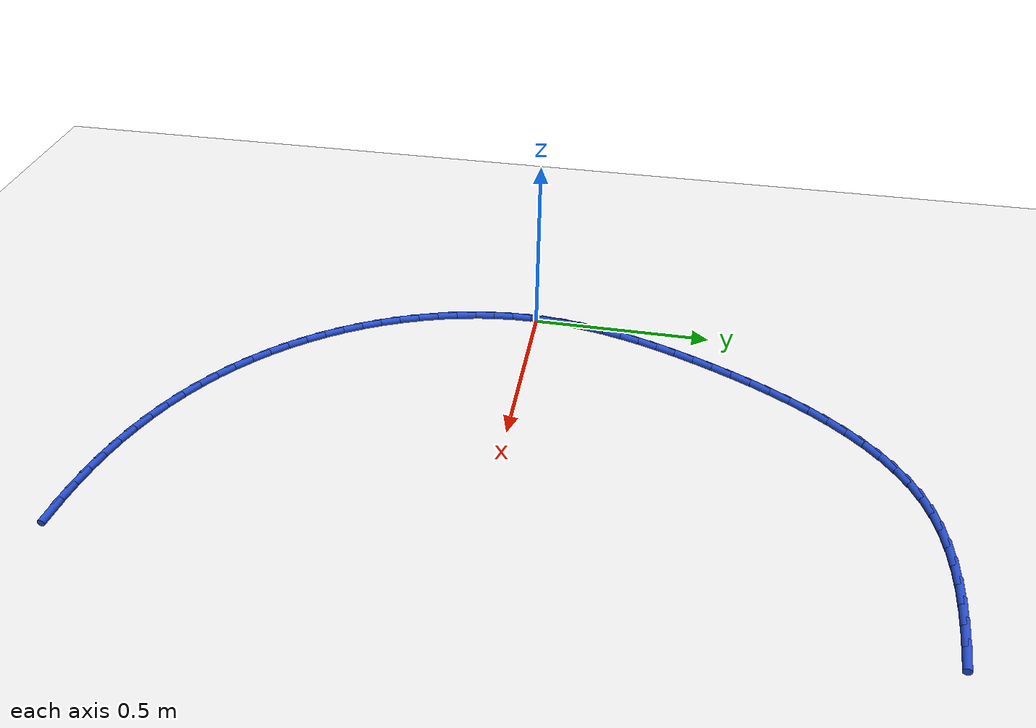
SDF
<sdf version="1.6">
 <world name="default">
  <model name="ground_plane">
   <static>1</static>
   <link name="link">
    <collision name="collision">
     <geometry><plane><normal>0 0 1</normal><size>100 100</size></plane></geometry>
     <surface><friction><ode><mu>100</mu><mu2>50</mu2></ode></friction></surface>
    </collision>
    <visual name="visual">
     <cast_shadows>0</cast_shadows>
     <geometry><plane><normal>0 0 1</normal><size>100 100</size></plane></geometry>
     <material>
      <script><uri>file://media/materials/scripts/gazebo.material</uri><name>Gazebo/WhiteGlow</name></script>
     </material>
    </visual>
   </link>
  </model>
  <model name="line">
   <link name="link_0">
    <pose>-4.163336342344337e-17 2.220446049250313e-16 0.01 0 1.57 1.5213798993555692</pose>
    <collision name="collision">
     <geometry><cylinder><radius>0.01</radius><length>0.08</length></cylinder></geometry>
    </collision>
    <visual name="visual">
     <material>
      <script><name>Gazebo/Blue</name><uri>file://media/materials/scripts/gazebo.material</uri></script>
     </material>
     <geometry><cylinder><radius>0.01</radius><length>0.08</length></cylinder></geometry>
    </visual>
   </link>
   <link name="link_1">
    <pose>0.0026710564004728526 0.05400798802511721 0.01 0 1.57 1.4602356780907475</pose>
    <collision name="collision">
     <geometry><cylinder><radius>0.01</radius><length>0.08</length></cylinder></geometry>
    </collision>
    <visual name="visual">
     <material>
      <script><name>Gazebo/Blue</name><uri>file://media/materials/scripts/gazebo.material</uri></script>
     </material>
     <geometry><cylinder><radius>0.01</radius><length>0.08</length></cylinder></geometry>
    </visual>
   </link>
   <link name="link_2">
    <pose>0.008623771560287964 0.10762960467957366 0.01 0 1.57 1.403256409578315</pose>
    <collision name="collision">
     <geometry><cylinder><radius>0.01</radius><length>0.08</length></cylinder></geometry>
    </collision>
    <visual name="visual">
     <material>
      <script><name>Gazebo/Blue</name><uri>file://media/materials/scripts/gazebo.material</uri></script>
     </material>
     <geometry><cylinder><radius>0.01</radius><length>0.08</length></cylinder></geometry>
    </visual>
   </link>
   <link name="link_3">
    <pose>0.01763726774199862 0.16092438326576103 0.01 0 1.57 1.350878469542962</pose>
    <collision name="collision">
     <geometry><cylinder><radius>0.01</radius><length>0.08</length></cylinder></geometry>
    </collision>
    <visual name="visual">
     <material>
      <script><name>Gazebo/Blue</name><uri>file://media/materials/scripts/gazebo.material</uri></script>
     </material>
     <geometry><cylinder><radius>0.01</radius><length>0.08</length></cylinder></geometry>
    </visual>
   </link>
   <link name="link_4">
    <pose>0.02949066720815816 0.21395185708607062 0.01 0 1.57 1.3033630996008845</pose>
    <collision name="collision">
     <geometry><cylinder><radius>0.01</radius><length>0.08</length></cylinder></geometry>
    </collision>
    <visual name="visual">
     <material>
      <script><name>Gazebo/Blue</name><uri>file://media/materials/scripts/gazebo.material</uri></script>
     </material>
     <geometry><cylinder><radius>0.01</radius><length>0.08</length></cylinder></geometry>
    </visual>
   </link>
   <link name="link_5">
    <pose>0.043963092221319874 0.2667715594428936 0.01 0 1.57 1.2608229454200668</pose>
    <collision name="collision">
     <geometry><cylinder><radius>0.01</radius><length>0.08</length></cylinder></geometry>
    </collision>
    <visual name="visual">
     <material>
      <script><name>Gazebo/Blue</name><uri>file://media/materials/scripts/gazebo.material</uri></script>
     </material>
     <geometry><cylinder><radius>0.01</radius><length>0.08</length></cylinder></geometry>
    </visual>
   </link>
   <link name="link_6">
    <pose>0.060833665044037144 0.31944302363862176 0.01 0 1.57 1.2232547197580919</pose>
    <collision name="collision">
     <geometry><cylinder><radius>0.01</radius><length>0.08</length></cylinder></geometry>
    </collision>
    <visual name="visual">
     <material>
      <script><name>Gazebo/Blue</name><uri>file://media/materials/scripts/gazebo.material</uri></script>
     </material>
     <geometry><cylinder><radius>0.01</radius><length>0.08</length></cylinder></geometry>
    </visual>
   </link>
   <link name="link_7">
    <pose>0.07988150793886328 0.3720257829756462 0.01 0 1.57 1.1905721218226917</pose>
    <collision name="collision">
     <geometry><cylinder><radius>0.01</radius><length>0.08</length></cylinder></geometry>
    </collision>
    <visual name="visual">
     <material>
      <script><name>Gazebo/Blue</name><uri>file://media/materials/scripts/gazebo.material</uri></script>
     </material>
     <geometry><cylinder><radius>0.01</radius><length>0.08</length></cylinder></geometry>
    </visual>
   </link>
   <link name="link_8">
    <pose>0.10088574316835158 0.4245793707563582 0.01 0 1.57 1.1626352932499124</pose>
    <collision name="collision">
     <geometry><cylinder><radius>0.01</radius><length>0.08</length></cylinder></geometry>
    </collision>
    <visual name="visual">
     <material>
      <script><name>Gazebo/Blue</name><uri>file://media/materials/scripts/gazebo.material</uri></script>
     </material>
     <geometry><cylinder><radius>0.01</radius><length>0.08</length></cylinder></geometry>
    </visual>
   </link>
   <link name="link_9">
    <pose>0.1236254929950554 0.47716332028314934 0.01 0 1.57 1.139017373451126</pose>
    <collision name="collision">
     <geometry><cylinder><radius>0.01</radius><length>0.08</length></cylinder></geometry>
    </collision>
    <visual name="visual">
     <material>
      <script><name>Gazebo/Blue</name><uri>file://media/materials/scripts/gazebo.material</uri></script>
     </material>
     <geometry><cylinder><radius>0.01</radius><length>0.08</length></cylinder></geometry>
    </visual>
   </link>
   <link name="link_10">
    <pose>0.14788924048165103 0.5298217751808431 0.01 0 1.57 1.115094577148918</pose>
    <collision name="collision">
     <geometry><cylinder><radius>0.01</radius><length>0.08</length></cylinder></geometry>
    </collision>
    <visual name="visual">
     <material>
      <script><name>Gazebo/Blue</name><uri>file://media/materials/scripts/gazebo.material</uri></script>
     </material>
     <geometry><cylinder><radius>0.01</radius><length>0.08</length></cylinder></geometry>
    </visual>
   </link>
   <link name="link_11">
    <pose>0.17362616966457067 0.5823346777091611 0.01 0 1.57 1.0868384699036158</pose>
    <collision name="collision">
     <geometry><cylinder><radius>0.01</radius><length>0.08</length></cylinder></geometry>
    </collision>
    <visual name="visual">
     <material>
      <script><name>Gazebo/Blue</name><uri>file://media/materials/scripts/gazebo.material</uri></script>
     </material>
     <geometry><cylinder><radius>0.01</radius><length>0.08</length></cylinder></geometry>
    </visual>
   </link>
   <link name="link_12">
    <pose>0.20092065656181435 0.6342597069688286 0.01 0 1.57 1.053699509300936</pose>
    <collision name="collision">
     <geometry><cylinder><radius>0.01</radius><length>0.08</length></cylinder></geometry>
    </collision>
    <visual name="visual">
     <material>
      <script><name>Gazebo/Blue</name><uri>file://media/materials/scripts/gazebo.material</uri></script>
     </material>
     <geometry><cylinder><radius>0.01</radius><length>0.08</length></cylinder></geometry>
    </visual>
   </link>
   <link name="link_13">
    <pose>0.22986128836330977 0.6851476186590111 0.01 0 1.57 1.0151223940566678</pose>
    <collision name="collision">
     <geometry><cylinder><radius>0.01</radius><length>0.08</length></cylinder></geometry>
    </collision>
    <visual name="visual">
     <material>
      <script><name>Gazebo/Blue</name><uri>file://media/materials/scripts/gazebo.material</uri></script>
     </material>
     <geometry><cylinder><radius>0.01</radius><length>0.08</length></cylinder></geometry>
    </visual>
   </link>
   <link name="link_14">
    <pose>0.2605366522589852 0.7345491684788752 0.01 0 1.57 0.9704307002136326</pose>
    <collision name="collision">
     <geometry><cylinder><radius>0.01</radius><length>0.08</length></cylinder></geometry>
    </collision>
    <visual name="visual">
     <material>
      <script><name>Gazebo/Blue</name><uri>file://media/materials/scripts/gazebo.material</uri></script>
     </material>
     <geometry><cylinder><radius>0.01</radius><length>0.08</length></cylinder></geometry>
    </visual>
   </link>
   <link name="link_15">
    <pose>0.2930353354387687 0.782015112127587 0.01 0 1.57 0.9188347352595696</pose>
    <collision name="collision">
     <geometry><cylinder><radius>0.01</radius><length>0.08</length></cylinder></geometry>
    </collision>
    <visual name="visual">
     <material>
      <script><name>Gazebo/Blue</name><uri>file://media/materials/scripts/gazebo.material</uri></script>
     </material>
     <geometry><cylinder><radius>0.01</radius><length>0.08</length></cylinder></geometry>
    </visual>
   </link>
   <link name="link_16">
    <pose>0.32744592509258835 0.8270962053043132 0.01 0 1.57 0.8594559325001385</pose>
    <collision name="collision">
     <geometry><cylinder><radius>0.01</radius><length>0.08</length></cylinder></geometry>
    </collision>
    <visual name="visual">
     <material>
      <script><name>Gazebo/Blue</name><uri>file://media/materials/scripts/gazebo.material</uri></script>
     </material>
     <geometry><cylinder><radius>0.01</radius><length>0.08</length></cylinder></geometry>
    </visual>
   </link>
   <link name="link_17">
    <pose>0.36385700841037194 0.8693432037082189 0.01 0 1.57 0.7913814676881316</pose>
    <collision name="collision">
     <geometry><cylinder><radius>0.01</radius><length>0.08</length></cylinder></geometry>
    </collision>
    <visual name="visual">
     <material>
      <script><name>Gazebo/Blue</name><uri>file://media/materials/scripts/gazebo.material</uri></script>
     </material>
     <geometry><cylinder><radius>0.01</radius><length>0.08</length></cylinder></geometry>
    </visual>
   </link>
   <link name="link_18">
    <pose>0.40235717258204784 0.9083068630384713 0.01 0 1.57 0.7137670806702792</pose>
    <collision name="collision">
     <geometry><cylinder><radius>0.01</radius><length>0.08</length></cylinder></geometry>
    </collision>
    <visual name="visual">
     <material>
      <script><name>Gazebo/Blue</name><uri>file://media/materials/scripts/gazebo.material</uri></script>
     </material>
     <geometry><cylinder><radius>0.01</radius><length>0.08</length></cylinder></geometry>
    </visual>
   </link>
   <link name="link_19">
    <pose>0.44303500479754404 0.9435379389942363 0.01 0 1.57 0.626006300253479</pose>
    <collision name="collision">
     <geometry><cylinder><radius>0.01</radius><length>0.08</length></cylinder></geometry>
    </collision>
    <visual name="visual">
     <material>
      <script><name>Gazebo/Blue</name><uri>file://media/materials/scripts/gazebo.material</uri></script>
     </material>
     <geometry><cylinder><radius>0.01</radius><length>0.08</length></cylinder></geometry>
    </visual>
   </link>
   <link name="link_20">
    <pose>0.4859790922467885 0.97458718727468 0.01 0 1.57 0.5279723317633592</pose>
    <collision name="collision">
     <geometry><cylinder><radius>0.01</radius><length>0.08</length></cylinder></geometry>
    </collision>
    <visual name="visual">
     <material>
      <script><name>Gazebo/Blue</name><uri>file://media/materials/scripts/gazebo.material</uri></script>
     </material>
     <geometry><cylinder><radius>0.01</radius><length>0.08</length></cylinder></geometry>
    </visual>
   </link>
   <link name="link_21">
    <pose>0.5312780221197093 1.0010053635789689 0.01 0 1.57 0.42048779458161795</pose>
    <collision name="collision">
     <geometry><cylinder><radius>0.01</radius><length>0.08</length></cylinder></geometry>
    </collision>
    <visual name="visual">
     <material>
      <script><name>Gazebo/Blue</name><uri>file://media/materials/scripts/gazebo.material</uri></script>
     </material>
     <geometry><cylinder><radius>0.01</radius><length>0.08</length></cylinder></geometry>
    </visual>
   </link>
   <link name="link_22">
    <pose>0.5790164688195484 1.0223519798896699 0.01 0 1.57 0.3130118421686684</pose>
    <collision name="collision">
     <geometry><cylinder><radius>0.01</radius><length>0.08</length></cylinder></geometry>
    </collision>
    <visual name="visual">
     <material>
      <script><name>Gazebo/Blue</name><uri>file://media/materials/scripts/gazebo.material</uri></script>
     </material>
     <geometry><cylinder><radius>0.01</radius><length>0.08</length></cylinder></geometry>
    </visual>
   </link>
   <link name="link_23">
    <pose>0.6291100602047545 1.0385648513203254 0.01 0 1.57 0.21768291861419742</pose>
    <collision name="collision">
     <geometry><cylinder><radius>0.01</radius><length>0.08</length></cylinder></geometry>
    </collision>
    <visual name="visual">
     <material>
      <script><name>Gazebo/Blue</name><uri>file://media/materials/scripts/gazebo.material</uri></script>
     </material>
     <geometry><cylinder><radius>0.01</radius><length>0.08</length></cylinder></geometry>
    </visual>
   </link>
   <link name="link_24">
    <pose>0.6812444927709163 1.0500963480413983 0.01 0 1.57 0.13547074327358968</pose>
    <collision name="collision">
     <geometry><cylinder><radius>0.01</radius><length>0.08</length></cylinder></geometry>
    </collision>
    <visual name="visual">
     <material>
      <script><name>Gazebo/Blue</name><uri>file://media/materials/scripts/gazebo.material</uri></script>
     </material>
     <geometry><cylinder><radius>0.01</radius><length>0.08</length></cylinder></geometry>
    </visual>
   </link>
   <link name="link_25">
    <pose>0.7350890109242738 1.057435657757362 0.01 0 1.57 0.06575182166351236</pose>
    <collision name="collision">
     <geometry><cylinder><radius>0.01</radius><length>0.08</length></cylinder></geometry>
    </collision>
    <visual name="visual">
     <material>
      <script><name>Gazebo/Blue</name><uri>file://media/materials/scripts/gazebo.material</uri></script>
     </material>
     <geometry><cylinder><radius>0.01</radius><length>0.08</length></cylinder></geometry>
    </visual>
   </link>
   <link name="link_26">
    <pose>0.7903128590710667 1.0610719681726888 0.01 0 1.57 0.007507956141668524</pose>
    <collision name="collision">
     <geometry><cylinder><radius>0.01</radius><length>0.08</length></cylinder></geometry>
    </collision>
    <visual name="visual">
     <material>
      <script><name>Gazebo/Blue</name><uri>file://media/materials/scripts/gazebo.material</uri></script>
     </material>
     <geometry><cylinder><radius>0.01</radius><length>0.08</length></cylinder></geometry>
    </visual>
   </link>
   <link name="link_27">
    <pose>0.8465852816175348 1.061494466991852 0.01 0 1.57 -0.04037312474878287</pose>
    <collision name="collision">
     <geometry><cylinder><radius>0.01</radius><length>0.08</length></cylinder></geometry>
    </collision>
    <visual name="visual">
     <material>
      <script><name>Gazebo/Blue</name><uri>file://media/materials/scripts/gazebo.material</uri></script>
     </material>
     <geometry><cylinder><radius>0.01</radius><length>0.08</length></cylinder></geometry>
    </visual>
   </link>
   <link name="link_28">
    <pose>0.9035755229699172 1.0591923419193239 0.01 0 1.57 -0.07891861042979487</pose>
    <collision name="collision">
     <geometry><cylinder><radius>0.01</radius><length>0.08</length></cylinder></geometry>
    </collision>
    <visual name="visual">
     <material>
      <script><name>Gazebo/Blue</name><uri>file://media/materials/scripts/gazebo.material</uri></script>
     </material>
     <geometry><cylinder><radius>0.01</radius><length>0.08</length></cylinder></geometry>
    </visual>
   </link>
   <link name="link_29">
    <pose>0.9609528275344542 1.0546547806595779 0.01 0 1.57 -0.10897651271507028</pose>
    <collision name="collision">
     <geometry><cylinder><radius>0.01</radius><length>0.08</length></cylinder></geometry>
    </collision>
    <visual name="visual">
     <material>
      <script><name>Gazebo/Blue</name><uri>file://media/materials/scripts/gazebo.material</uri></script>
     </material>
     <geometry><cylinder><radius>0.01</radius><length>0.08</length></cylinder></geometry>
    </visual>
   </link>
   <link name="link_30">
    <pose>1.0183864397173852 1.048370970917086 0.01 0 1.57 -0.13149239509312316</pose>
    <collision name="collision">
     <geometry><cylinder><radius>0.01</radius><length>0.08</length></cylinder></geometry>
    </collision>
    <visual name="visual">
     <material>
      <script><name>Gazebo/Blue</name><uri>file://media/materials/scripts/gazebo.material</uri></script>
     </material>
     <geometry><cylinder><radius>0.01</radius><length>0.08</length></cylinder></geometry>
    </visual>
   </link>
   <link name="link_92">
    <pose>0.9837707398523249 -1.0049969833018282 0.01 0 1.57 -0.08885118919624817</pose>
    <collision name="collision">
     <geometry><cylinder><radius>0.01</radius><length>0.08</length></cylinder></geometry>
    </collision>
    <visual name="visual">
     <material>
      <script><name>Gazebo/Blue</name><uri>file://media/materials/scripts/gazebo.material</uri></script>
     </material>
     <geometry><cylinder><radius>0.01</radius><length>0.08</length></cylinder></geometry>
    </visual>
   </link>
   <link name="link_93">
    <pose>0.9281698690119202 -1.0000437384223095 0.01 0 1.57 -0.1322165508828624</pose>
    <collision name="collision">
     <geometry><cylinder><radius>0.01</radius><length>0.08</length></cylinder></geometry>
    </collision>
    <visual name="visual">
     <material>
      <script><name>Gazebo/Blue</name><uri>file://media/materials/scripts/gazebo.material</uri></script>
     </material>
     <geometry><cylinder><radius>0.01</radius><length>0.08</length></cylinder></geometry>
    </visual>
   </link>
   <link name="link_94">
    <pose>0.8728214421736724 -0.9926828176417435 0.01 0 1.57 -0.17686162115654824</pose>
    <collision name="collision">
     <geometry><cylinder><radius>0.01</radius><length>0.08</length></cylinder></geometry>
    </collision>
    <visual name="visual">
     <material>
      <script><name>Gazebo/Blue</name><uri>file://media/materials/scripts/gazebo.material</uri></script>
     </material>
     <geometry><cylinder><radius>0.01</radius><length>0.08</length></cylinder></geometry>
    </visual>
   </link>
   <link name="link_95">
    <pose>0.8178910814430979 -0.9828651653923188 0.01 0 1.57 -0.22298528979045557</pose>
    <collision name="collision">
     <geometry><cylinder><radius>0.01</radius><length>0.08</length></cylinder></geometry>
    </collision>
    <visual name="visual">
     <material>
      <script><name>Gazebo/Blue</name><uri>file://media/materials/scripts/gazebo.material</uri></script>
     </material>
     <geometry><cylinder><radius>0.01</radius><length>0.08</length></cylinder></geometry>
    </visual>
   </link>
   <link name="link_96">
    <pose>0.7635444089257115 -0.9705417261062229 0.01 0 1.57 -0.27077580862197453</pose>
    <collision name="collision">
     <geometry><cylinder><radius>0.01</radius><length>0.08</length></cylinder></geometry>
    </collision>
    <visual name="visual">
     <material>
      <script><name>Gazebo/Blue</name><uri>file://media/materials/scripts/gazebo.material</uri></script>
     </material>
     <geometry><cylinder><radius>0.01</radius><length>0.08</length></cylinder></geometry>
    </visual>
   </link>
   <link name="link_97">
    <pose>0.7099470467270316 -0.9556634442156445 0.01 0 1.57 -0.32040668066045513</pose>
    <collision name="collision">
     <geometry><cylinder><radius>0.01</radius><length>0.08</length></cylinder></geometry>
    </collision>
    <visual name="visual">
     <material>
      <script><name>Gazebo/Blue</name><uri>file://media/materials/scripts/gazebo.material</uri></script>
     </material>
     <geometry><cylinder><radius>0.01</radius><length>0.08</length></cylinder></geometry>
    </visual>
   </link>
   <link name="link_98">
    <pose>0.6572646169525734 -0.9381812641527719 0.01 0 1.57 -0.372031038634838</pose>
    <collision name="collision">
     <geometry><cylinder><radius>0.01</radius><length>0.08</length></cylinder></geometry>
    </collision>
    <visual name="visual">
     <material>
      <script><name>Gazebo/Blue</name><uri>file://media/materials/scripts/gazebo.material</uri></script>
     </material>
     <geometry><cylinder><radius>0.01</radius><length>0.08</length></cylinder></geometry>
    </visual>
   </link>
   <link name="link_99">
    <pose>0.6056627417078537 -0.9180461303497934 0.01 0 1.57 -0.42577444709502554</pose>
    <collision name="collision">
     <geometry><cylinder><radius>0.01</radius><length>0.08</length></cylinder></geometry>
    </collision>
    <visual name="visual">
     <material>
      <script><name>Gazebo/Blue</name><uri>file://media/materials/scripts/gazebo.material</uri></script>
     </material>
     <geometry><cylinder><radius>0.01</radius><length>0.08</length></cylinder></geometry>
    </visual>
   </link>
   <link name="link_100">
    <pose>0.5553070430983883 -0.8952089872388971 0.01 0 1.57 -0.4817262051464183</pose>
    <collision name="collision">
     <geometry><cylinder><radius>0.01</radius><length>0.08</length></cylinder></geometry>
    </collision>
    <visual name="visual">
     <material>
      <script><name>Gazebo/Blue</name><uri>file://media/materials/scripts/gazebo.material</uri></script>
     </material>
     <geometry><cylinder><radius>0.01</radius><length>0.08</length></cylinder></geometry>
    </visual>
   </link>
   <link name="link_101">
    <pose>0.5063631432296948 -0.8696207792522719 0.01 0 1.57 -0.5395858448969341</pose>
    <collision name="collision">
     <geometry><cylinder><radius>0.01</radius><length>0.08</length></cylinder></geometry>
    </collision>
    <visual name="visual">
     <material>
      <script><name>Gazebo/Blue</name><uri>file://media/materials/scripts/gazebo.material</uri></script>
     </material>
     <geometry><cylinder><radius>0.01</radius><length>0.08</length></cylinder></geometry>
    </visual>
   </link>
   <link name="link_102">
    <pose>0.4589905924674367 -0.8412509315944294 0.01 0 1.57 -0.597336494291697</pose>
    <collision name="collision">
     <geometry><cylinder><radius>0.01</radius><length>0.08</length></cylinder></geometry>
    </collision>
    <visual name="visual">
     <material>
      <script><name>Gazebo/Blue</name><uri>file://media/materials/scripts/gazebo.material</uri></script>
     </material>
     <geometry><cylinder><radius>0.01</radius><length>0.08</length></cylinder></geometry>
    </visual>
   </link>
   <link name="link_103">
    <pose>0.41331267084806933 -0.8101792667715723 0.01 0 1.57 -0.6543202748706809</pose>
    <collision name="collision">
     <geometry><cylinder><radius>0.01</radius><length>0.08</length></cylinder></geometry>
    </collision>
    <visual name="visual">
     <material>
      <script><name>Gazebo/Blue</name><uri>file://media/materials/scripts/gazebo.material</uri></script>
     </material>
     <geometry><cylinder><radius>0.01</radius><length>0.08</length></cylinder></geometry>
    </visual>
   </link>
   <link name="link_104">
    <pose>0.36943924804822037 -0.7765264248830108 0.01 0 1.57 -0.710661439988947</pose>
    <collision name="collision">
     <geometry><cylinder><radius>0.01</radius><length>0.08</length></cylinder></geometry>
    </collision>
    <visual name="visual">
     <material>
      <script><name>Gazebo/Blue</name><uri>file://media/materials/scripts/gazebo.material</uri></script>
     </material>
     <geometry><cylinder><radius>0.01</radius><length>0.08</length></cylinder></geometry>
    </visual>
   </link>
   <link name="link_105">
    <pose>0.3274801721939681 -0.7404131116222422 0.01 0 1.57 -0.7664969777578826</pose>
    <collision name="collision">
     <geometry><cylinder><radius>0.01</radius><length>0.08</length></cylinder></geometry>
    </collision>
    <visual name="visual">
     <material>
      <script><name>Gazebo/Blue</name><uri>file://media/materials/scripts/gazebo.material</uri></script>
     </material>
     <geometry><cylinder><radius>0.01</radius><length>0.08</length></cylinder></geometry>
    </visual>
   </link>
   <link name="link_106">
    <pose>0.28754529141138896 -0.7019600326827623 0.01 0 1.57 -0.8219715307535842</pose>
    <collision name="collision">
     <geometry><cylinder><radius>0.01</radius><length>0.08</length></cylinder></geometry>
    </collision>
    <visual name="visual">
     <material>
      <script><name>Gazebo/Blue</name><uri>file://media/materials/scripts/gazebo.material</uri></script>
     </material>
     <geometry><cylinder><radius>0.01</radius><length>0.08</length></cylinder></geometry>
    </visual>
   </link>
   <link name="link_107">
    <pose>0.2497444538265605 -0.6612878937580672 0.01 0 1.57 -0.8772338775729813</pose>
    <collision name="collision">
     <geometry><cylinder><radius>0.01</radius><length>0.08</length></cylinder></geometry>
    </collision>
    <visual name="visual">
     <material>
      <script><name>Gazebo/Blue</name><uri>file://media/materials/scripts/gazebo.material</uri></script>
     </material>
     <geometry><cylinder><radius>0.01</radius><length>0.08</length></cylinder></geometry>
    </visual>
   </link>
   <link name="link_108">
    <pose>0.21418750756555915 -0.6185174005416522 0.01 0 1.57 -0.9324336758562088</pose>
    <collision name="collision">
     <geometry><cylinder><radius>0.01</radius><length>0.08</length></cylinder></geometry>
    </collision>
    <visual name="visual">
     <material>
      <script><name>Gazebo/Blue</name><uri>file://media/materials/scripts/gazebo.material</uri></script>
     </material>
     <geometry><cylinder><radius>0.01</radius><length>0.08</length></cylinder></geometry>
    </visual>
   </link>
   <link name="link_109">
    <pose>0.18098430075446312 -0.5737692587270147 0.01 0 1.57 -0.9877183672682712</pose>
    <collision name="collision">
     <geometry><cylinder><radius>0.01</radius><length>0.08</length></cylinder></geometry>
    </collision>
    <visual name="visual">
     <material>
      <script><name>Gazebo/Blue</name><uri>file://media/materials/scripts/gazebo.material</uri></script>
     </material>
     <geometry><cylinder><radius>0.01</radius><length>0.08</length></cylinder></geometry>
    </visual>
   </link>
   <link name="link_110">
    <pose>0.15024468151934914 -0.5271641740076503 0.01 0 1.57 -1.0432137104779273</pose>
    <collision name="collision">
     <geometry><cylinder><radius>0.01</radius><length>0.08</length></cylinder></geometry>
    </collision>
    <visual name="visual">
     <material>
      <script><name>Gazebo/Blue</name><uri>file://media/materials/scripts/gazebo.material</uri></script>
     </material>
     <geometry><cylinder><radius>0.01</radius><length>0.08</length></cylinder></geometry>
    </visual>
   </link>
   <link name="link_111">
    <pose>0.12207825366177193 -0.4788242585979495 0.01 0 1.57 -1.0985661895234258</pose>
    <collision name="collision">
     <geometry><cylinder><radius>0.01</radius><length>0.08</length></cylinder></geometry>
    </collision>
    <visual name="visual">
     <material>
      <script><name>Gazebo/Blue</name><uri>file://media/materials/scripts/gazebo.material</uri></script>
     </material>
     <geometry><cylinder><radius>0.01</radius><length>0.08</length></cylinder></geometry>
    </visual>
   </link>
   <link name="link_112">
    <pose>0.09658677739083771 -0.428916778496109 0.01 0 1.57 -1.153476819362812</pose>
    <collision name="collision">
     <geometry><cylinder><radius>0.01</radius><length>0.08</length></cylinder></geometry>
    </collision>
    <visual name="visual">
     <material>
      <script><name>Gazebo/Blue</name><uri>file://media/materials/scripts/gazebo.material</uri></script>
     </material>
     <geometry><cylinder><radius>0.01</radius><length>0.08</length></cylinder></geometry>
    </visual>
   </link>
   <link name="link_113">
    <pose>0.07386268933795682 -0.3776626734237424 0.01 0 1.57 -1.208288879091472</pose>
    <collision name="collision">
     <geometry><cylinder><radius>0.01</radius><length>0.08</length></cylinder></geometry>
    </collision>
    <visual name="visual">
     <material>
      <script><name>Gazebo/Blue</name><uri>file://media/materials/scripts/gazebo.material</uri></script>
     </material>
     <geometry><cylinder><radius>0.01</radius><length>0.08</length></cylinder></geometry>
    </visual>
   </link>
   <link name="link_114">
    <pose>0.053997883037970866 -0.3252860095862962 0.01 0 1.57 -1.263383797720794</pose>
    <collision name="collision">
     <geometry><cylinder><radius>0.01</radius><length>0.08</length></cylinder></geometry>
    </collision>
    <visual name="visual">
     <material>
      <script><name>Gazebo/Blue</name><uri>file://media/materials/scripts/gazebo.material</uri></script>
     </material>
     <geometry><cylinder><radius>0.01</radius><length>0.08</length></cylinder></geometry>
    </visual>
   </link>
   <link name="link_115">
    <pose>0.037084252025721604 -0.27201085318921725 0.01 0 1.57 -1.3191443905275437</pose>
    <collision name="collision">
     <geometry><cylinder><radius>0.01</radius><length>0.08</length></cylinder></geometry>
    </collision>
    <visual name="visual">
     <material>
      <script><name>Gazebo/Blue</name><uri>file://media/materials/scripts/gazebo.material</uri></script>
     </material>
     <geometry><cylinder><radius>0.01</radius><length>0.08</length></cylinder></geometry>
    </visual>
   </link>
   <link name="link_116">
    <pose>0.02321368983605151 -0.2180612704379542 0.01 0 1.57 -1.375954187523004</pose>
    <collision name="collision">
     <geometry><cylinder><radius>0.01</radius><length>0.08</length></cylinder></geometry>
    </collision>
    <visual name="visual">
     <material>
      <script><name>Gazebo/Blue</name><uri>file://media/materials/scripts/gazebo.material</uri></script>
     </material>
     <geometry><cylinder><radius>0.01</radius><length>0.08</length></cylinder></geometry>
    </visual>
   </link>
   <link name="link_117">
    <pose>0.012478090003802306 -0.16366132753795365 0.01 0 1.57 -1.434195630736301</pose>
    <collision name="collision">
     <geometry><cylinder><radius>0.01</radius><length>0.08</length></cylinder></geometry>
    </collision>
    <visual name="visual">
     <material>
      <script><name>Gazebo/Blue</name><uri>file://media/materials/scripts/gazebo.material</uri></script>
     </material>
     <geometry><cylinder><radius>0.01</radius><length>0.08</length></cylinder></geometry>
    </visual>
   </link>
   <link name="link_118">
    <pose>0.0049693460638159884 -0.10903509069466305 0.01 0 1.57 -1.4942463627096079</pose>
    <collision name="collision">
     <geometry><cylinder><radius>0.01</radius><length>0.08</length></cylinder></geometry>
    </collision>
    <visual name="visual">
     <material>
      <script><name>Gazebo/Blue</name><uri>file://media/materials/scripts/gazebo.material</uri></script>
     </material>
     <geometry><cylinder><radius>0.01</radius><length>0.08</length></cylinder></geometry>
    </visual>
   </link>
   <link name="link_119">
    <pose>0.0007793515509345109 -0.05440662611352884 0.01 0 1.57 -1.556472735952127</pose>
    <collision name="collision">
     <geometry><cylinder><radius>0.01</radius><length>0.08</length></cylinder></geometry>
    </collision>
    <visual name="visual">
     <material>
      <script><name>Gazebo/Blue</name><uri>file://media/materials/scripts/gazebo.material</uri></script>
     </material>
     <geometry><cylinder><radius>0.01</radius><length>0.08</length></cylinder></geometry>
    </visual>
   </link>
   <link name="link_120">
    <pose>-2.7755575615628914e-17 8.326672684688674e-17 0.01 0 1.57 1.520373045266249</pose>
    <collision name="collision">
     <geometry><cylinder><radius>0.01</radius><length>0.08</length></cylinder></geometry>
    </collision>
    <visual name="visual">
     <material>
      <script><name>Gazebo/Blue</name><uri>file://media/materials/scripts/gazebo.material</uri></script>
     </material>
     <geometry><cylinder><radius>0.01</radius><length>0.08</length></cylinder></geometry>
    </visual>
   </link>
   <link name="link_121">
    <pose>0.002723184945854284 0.05396072144047707 0.01 0 1.57 1.5203730452662487</pose>
    <collision name="collision">
     <geometry><cylinder><radius>0.01</radius><length>0.08</length></cylinder></geometry>
    </collision>
    <visual name="visual">
     <material>
      <script><name>Gazebo/Blue</name><uri>file://media/materials/scripts/gazebo.material</uri></script>
     </material>
     <geometry><cylinder><radius>0.01</radius><length>0.08</length></cylinder></geometry>
    </visual>
   </link>
  </model>
 </world>
</sdf>
